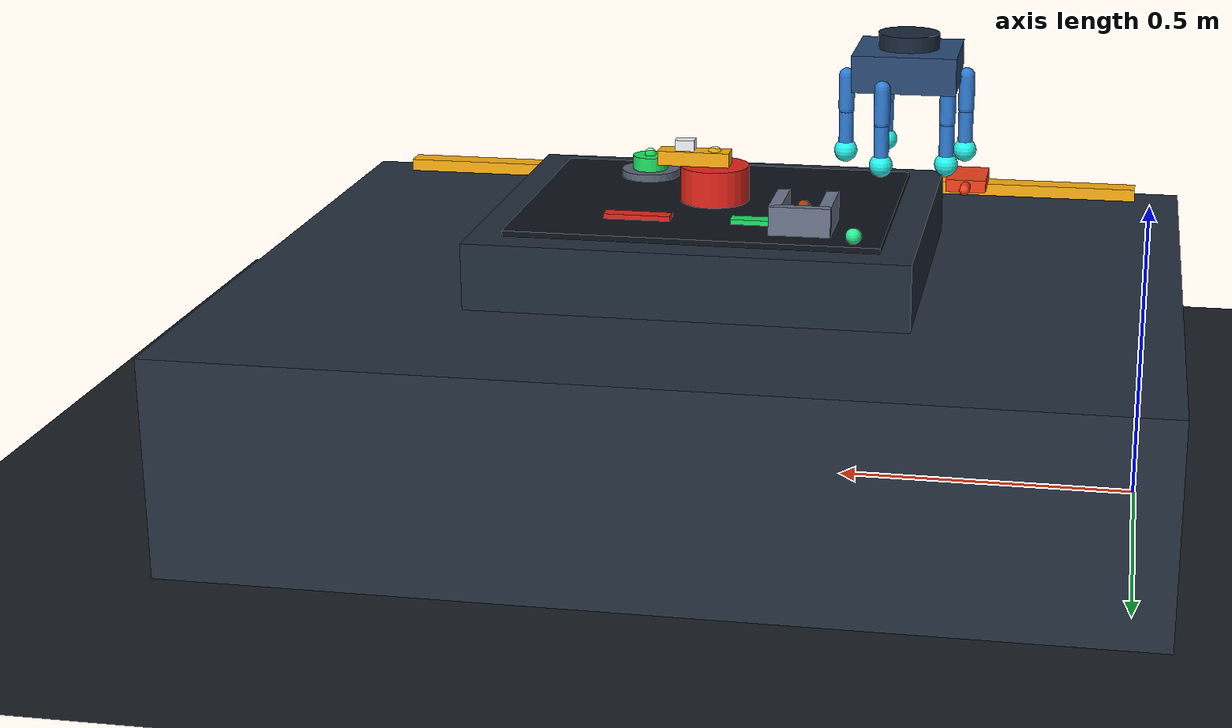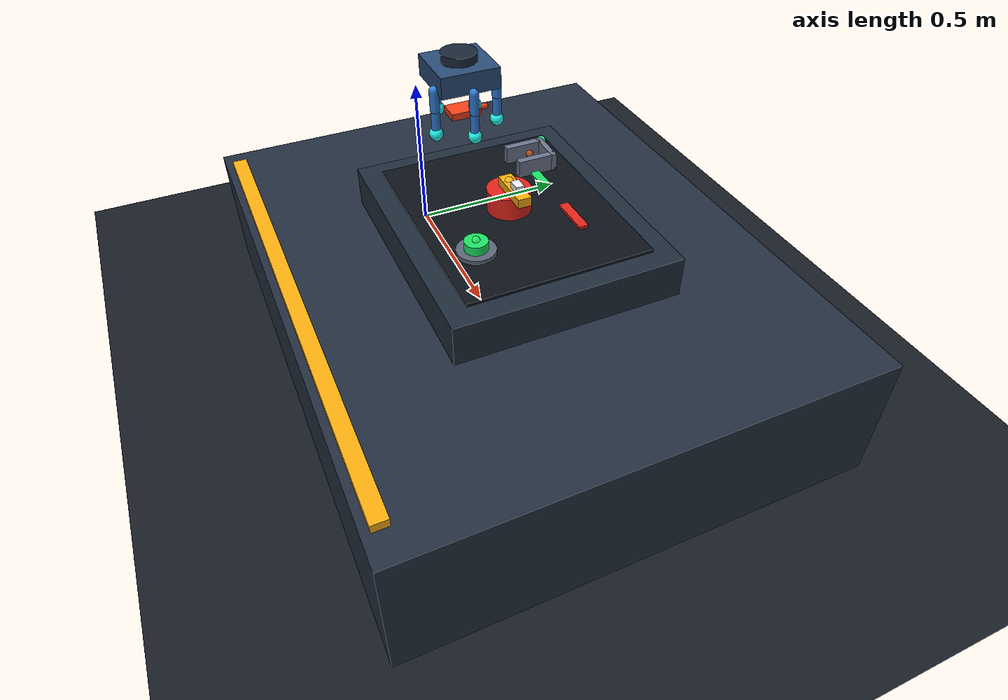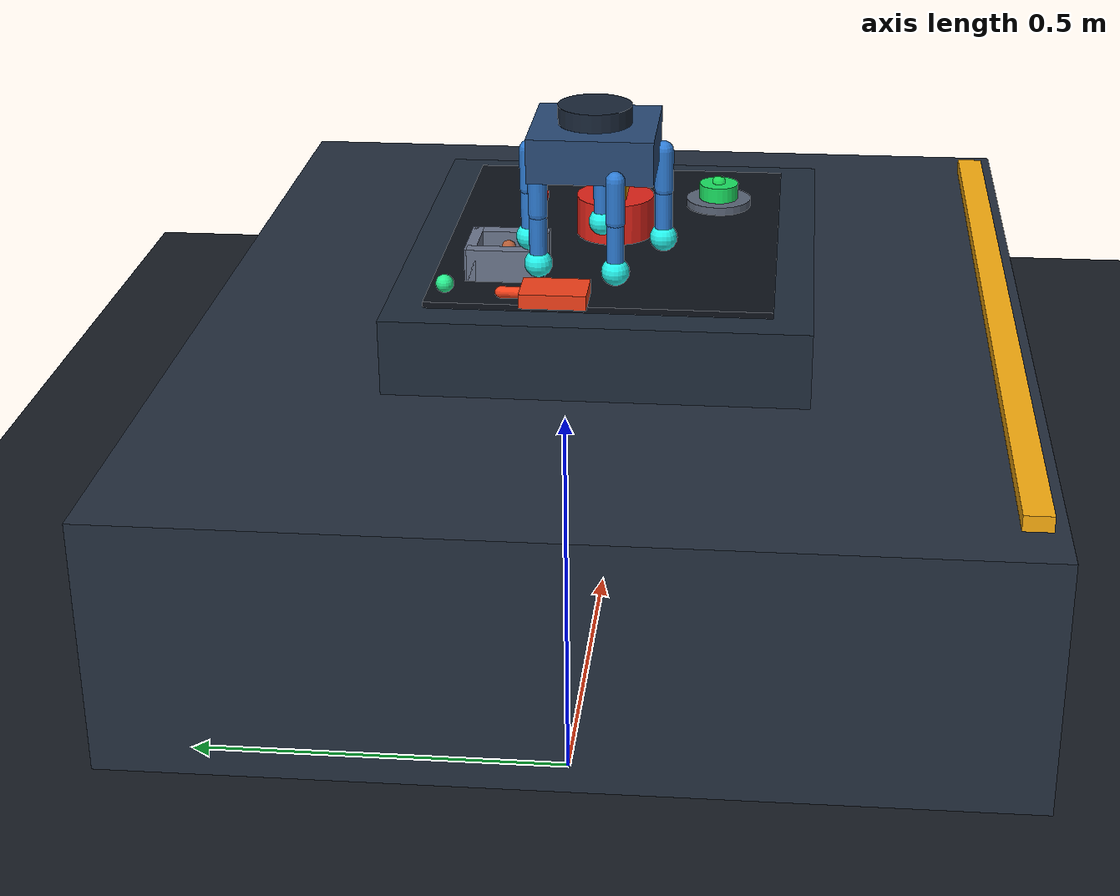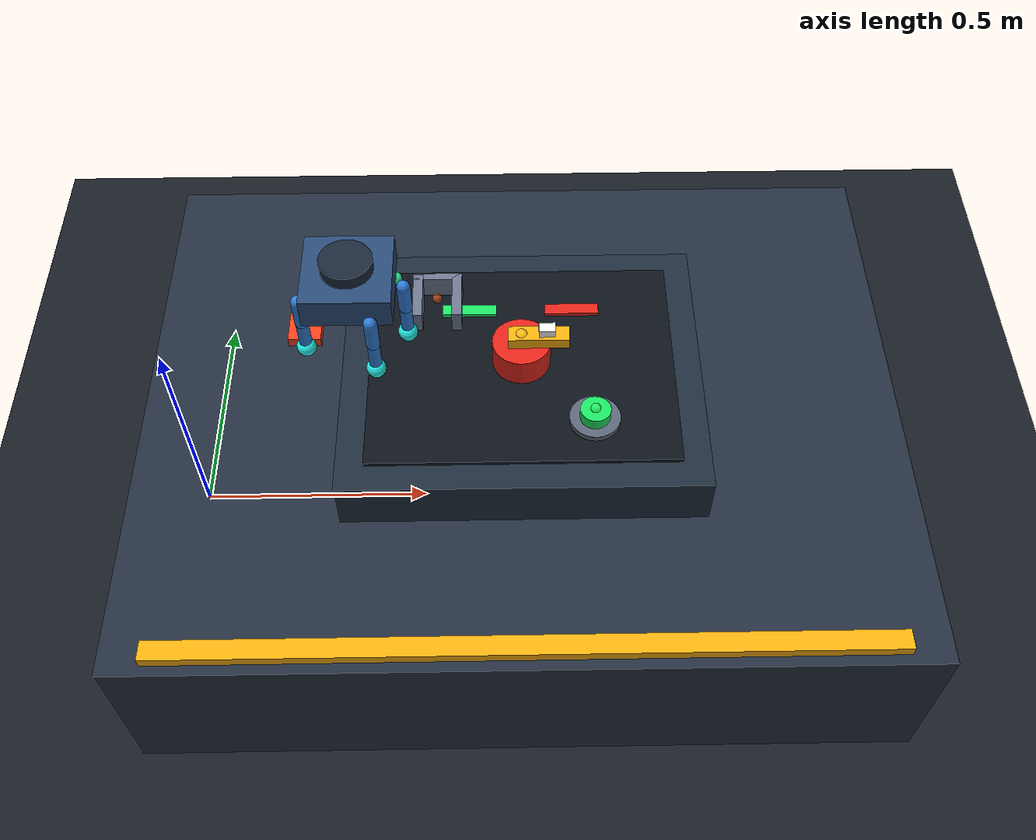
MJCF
<mujoco model="Lockout Relay Rescue">
  <compiler angle="radian" coordinate="local"/>
  <option timestep="0.004" integrator="implicitfast" gravity="0 0 -9.81"/>
  <size nconmax="600" njmax="800"/>
  <visual>
    <global offwidth="800" offheight="500" azimuth="142" elevation="-28"/>
    <quality shadowsize="4096" offsamples="4"/>
  </visual>
  <default>
    <joint damping="1.1" armature="0.018" limited="true"/>
    <geom density="420" friction="1.10 0.018 0.004" condim="4"/>
    <position kp="420" forcerange="-150 150"/>
  </default>
  <asset>
    <texture type="skybox" builtin="gradient" rgb1="0.055 0.080 0.110" rgb2="0.005 0.008 0.015" width="512" height="3072"/>
    <texture name="floor_tex" type="2d" builtin="checker" rgb1="0.075 0.095 0.120" rgb2="0.115 0.135 0.165" width="256" height="256"/>
    <material name="floor" texture="floor_tex" texrepeat="6 6" reflectance="0.22"/>
    <material name="panel_material" rgba="0.12 0.17 0.23 1"/>
    <material name="safety_yellow" rgba="0.98 0.68 0.06 1"/>
    <material name="relay_red" rgba="0.88 0.14 0.10 1"/>
    <material name="safe_green" rgba="0.10 0.88 0.38 1"/>
    <material name="finger_material" rgba="0.18 0.48 0.82 1"/>
    <material name="finger_tip" rgba="0.14 0.95 0.92 1"/>
    <material name="lockout_tag" rgba="0.95 0.25 0.10 1"/>
  </asset>
  <worldbody>
    <light name="key_light" pos="-0.4 -1.3 2.4" dir="0.4 0.6 -1" diffuse="1.0 0.88 0.72" castshadow="true"/>
    <light name="rim_light" pos="1.7 1.1 1.8" dir="-1 -0.7 -0.5" diffuse="0.24 0.48 1.0"/>
    <geom name="floor" type="plane" size="4 4 0.1" material="floor"/>
    <geom name="workbench" type="box" pos="0.72 0 0.18" size="0.78 0.62 0.18" rgba="0.14 0.18 0.24 1" contype="0" conaffinity="0"/>
    <geom name="bench_front_stripe" type="box" pos="0.72 -0.58 0.37" size="0.70 0.020 0.012" material="safety_yellow" contype="0" conaffinity="0"/>

    <body name="safety_panel" pos="0.72 0 0.34" gravcomp="1">
      <joint name="panel_x" type="slide" axis="1 0 0" range="-0.045 0.045"/>
      <joint name="panel_y" type="slide" axis="0 1 0" range="-0.045 0.045"/>
      <geom name="panel_chassis" type="box" pos="0 0 0.065" size="0.36 0.30 0.065" material="panel_material"/>
      <geom name="panel_inset" type="box" pos="0 0 0.133" size="0.305 0.245 0.006" rgba="0.05 0.07 0.10 1"/>
      <geom name="panel_label_safe" type="box" pos="-0.105 0.132 0.143" size="0.055 0.013 0.004" material="safe_green" contype="0" conaffinity="0"/>
      <geom name="panel_label_live" type="box" pos="0.105 0.132 0.143" size="0.055 0.013 0.004" material="relay_red" contype="0" conaffinity="0"/>
      <site name="vision_marker" type="sphere" pos="-0.26 0.22 0.150" size="0.013" rgba="0.15 0.92 0.55 0.90"/>

      <body name="rotary_isolator" pos="0 0 0.145" gravcomp="1">
        <joint name="isolator_angle" type="hinge" axis="0 0 1" range="0 1.5708" damping="1.8" armature="0.008"/>
        <geom name="isolator_knob" type="cylinder" pos="0 0 0.025" size="0.058 0.030" material="relay_red"/>
        <geom name="isolator_handle" type="box" pos="0.034 0 0.067" size="0.060 0.018 0.012" material="safety_yellow"/>
        <geom name="isolator_key" type="box" pos="0.050 0 0.086" size="0.016 0.011 0.011" rgba="0.96 0.96 0.98 1"/>
        <site name="isolator_center" type="sphere" pos="0 0 0.075" size="0.012" rgba="1 0.8 0.1 0.35"/>
      </body>

      <body name="verification_latch" pos="0.14 -0.15 0.135">
        <joint name="latch_travel" type="slide" axis="0 0 -1" range="0 0.032" stiffness="340" springref="0" damping="3.5"/>
        <geom name="latch_guard" type="cylinder" size="0.050 0.016" rgba="0.35 0.39 0.46 1" contype="1" conaffinity="1"/>
        <geom name="latch_button" type="cylinder" pos="0 0 0.020" size="0.030 0.020" material="safe_green"/>
        <site name="latch_site" type="sphere" pos="0 0 0.042" size="0.010" rgba="0.2 1 0.4 0.45"/>
      </body>

      <geom name="tag_slot_left" type="box" pos="-0.2100 0.1400 0.158" size="0.010 0.055 0.028" rgba="0.42 0.46 0.55 1"/>
      <geom name="tag_slot_right" type="box" pos="-0.1300 0.1400 0.158" size="0.010 0.055 0.028" rgba="0.42 0.46 0.55 1"/>
      <geom name="tag_slot_back" type="box" pos="-0.1700 0.1900 0.158" size="0.050 0.008 0.028" rgba="0.42 0.46 0.55 1"/>
      <site name="tag_slot_target" type="sphere" pos="-0.17 0.14 0.174" size="0.010" rgba="1 0.40 0.10 0.60"/>
    </body>

    <body name="cartesian_hand" pos="0.4 0.0 0.72" gravcomp="1">
      <joint name="hand_x" type="slide" axis="1 0 0" range="-0.28 0.54"/>
      <joint name="hand_y" type="slide" axis="0 1 0" range="-0.48 0.48"/>
      <joint name="hand_z" type="slide" axis="0 0 1" range="-0.16 0.30"/>
      <joint name="wrist_yaw" type="hinge" axis="0 0 1" range="-1.75 1.75"/>
      <geom name="palm" type="box" size="0.084 0.084 0.030" rgba="0.16 0.29 0.46 1"/>
      <geom name="palm_guard" type="cylinder" pos="0 0 0.035" size="0.050 0.020" rgba="0.10 0.15 0.22 1" contype="0" conaffinity="0"/>
      <site name="palm_pose" type="sphere" size="0.010" rgba="0.15 0.85 1 0.60"/>

      <body name="finger_0" pos="0.10000 0.00000 -0.020">
        <joint name="finger_0_radial" type="slide" axis="-1.00000 -0.00000 0" range="0 0.062"/>
        <joint name="finger_0_knuckle" type="hinge" axis="0.00000 -1.00000 0" range="-0.10 0.65"/>
        <geom name="finger_0_proximal" type="capsule" fromto="0 0 0 0 0 -0.055" size="0.013" material="finger_material"/>
        <body name="finger_0_distal_body" pos="0 0 -0.055">
          <joint name="finger_0_distal" type="hinge" axis="0.00000 -1.00000 0" range="-0.10 0.75"/>
          <geom name="finger_0_distal" type="capsule" fromto="0 0 0 0 0 -0.060" size="0.012" material="finger_material"/>
          <geom name="finger_0_tip" type="sphere" pos="0 0 -0.070" size="0.019" material="finger_tip"/>
          <site name="finger_0_touch" type="sphere" pos="0 0 -0.070" size="0.017" rgba="0.20 0.95 0.95 0.40"/>
        </body>
      </body>

      <body name="finger_1" pos="0.03200 0.09400 -0.020">
        <joint name="finger_1_radial" type="slide" axis="-0.32226 -0.94665 0" range="0 0.062"/>
        <joint name="finger_1_knuckle" type="hinge" axis="0.94665 -0.32226 0" range="-0.10 0.65"/>
        <geom name="finger_1_proximal" type="capsule" fromto="0 0 0 0 0 -0.055" size="0.013" material="finger_material"/>
        <body name="finger_1_distal_body" pos="0 0 -0.055">
          <joint name="finger_1_distal" type="hinge" axis="0.94665 -0.32226 0" range="-0.10 0.75"/>
          <geom name="finger_1_distal" type="capsule" fromto="0 0 0 0 0 -0.060" size="0.012" material="finger_material"/>
          <geom name="finger_1_tip" type="sphere" pos="0 0 -0.070" size="0.019" material="finger_tip"/>
          <site name="finger_1_touch" type="sphere" pos="0 0 -0.070" size="0.017" rgba="0.20 0.95 0.95 0.40"/>
        </body>
      </body>

      <body name="finger_2" pos="-0.07100 0.07000 -0.020">
        <joint name="finger_2_radial" type="slide" axis="0.71210 -0.70207 0" range="0 0.062"/>
        <joint name="finger_2_knuckle" type="hinge" axis="0.70207 0.71210 0" range="-0.10 0.65"/>
        <geom name="finger_2_proximal" type="capsule" fromto="0 0 0 0 0 -0.055" size="0.013" material="finger_material"/>
        <body name="finger_2_distal_body" pos="0 0 -0.055">
          <joint name="finger_2_distal" type="hinge" axis="0.70207 0.71210 0" range="-0.10 0.75"/>
          <geom name="finger_2_distal" type="capsule" fromto="0 0 0 0 0 -0.060" size="0.012" material="finger_material"/>
          <geom name="finger_2_tip" type="sphere" pos="0 0 -0.070" size="0.019" material="finger_tip"/>
          <site name="finger_2_touch" type="sphere" pos="0 0 -0.070" size="0.017" rgba="0.20 0.95 0.95 0.40"/>
        </body>
      </body>

      <body name="finger_3" pos="-0.09400 -0.03500 -0.020">
        <joint name="finger_3_radial" type="slide" axis="0.93715 0.34894 0" range="0 0.062"/>
        <joint name="finger_3_knuckle" type="hinge" axis="-0.34894 0.93715 0" range="-0.10 0.65"/>
        <geom name="finger_3_proximal" type="capsule" fromto="0 0 0 0 0 -0.055" size="0.013" material="finger_material"/>
        <body name="finger_3_distal_body" pos="0 0 -0.055">
          <joint name="finger_3_distal" type="hinge" axis="-0.34894 0.93715 0" range="-0.10 0.75"/>
          <geom name="finger_3_distal" type="capsule" fromto="0 0 0 0 0 -0.060" size="0.012" material="finger_material"/>
          <geom name="finger_3_tip" type="sphere" pos="0 0 -0.070" size="0.019" material="finger_tip"/>
          <site name="finger_3_touch" type="sphere" pos="0 0 -0.070" size="0.017" rgba="0.20 0.95 0.95 0.40"/>
        </body>
      </body>

      <body name="finger_4" pos="0.04300 -0.09000 -0.020">
        <joint name="finger_4_radial" type="slide" axis="-0.43110 0.90230 0" range="0 0.062"/>
        <joint name="finger_4_knuckle" type="hinge" axis="-0.90230 -0.43110 0" range="-0.10 0.65"/>
        <geom name="finger_4_proximal" type="capsule" fromto="0 0 0 0 0 -0.055" size="0.013" material="finger_material"/>
        <body name="finger_4_distal_body" pos="0 0 -0.055">
          <joint name="finger_4_distal" type="hinge" axis="-0.90230 -0.43110 0" range="-0.10 0.75"/>
          <geom name="finger_4_distal" type="capsule" fromto="0 0 0 0 0 -0.060" size="0.012" material="finger_material"/>
          <geom name="finger_4_tip" type="sphere" pos="0 0 -0.070" size="0.019" material="finger_tip"/>
          <site name="finger_4_touch" type="sphere" pos="0 0 -0.070" size="0.017" rgba="0.20 0.95 0.95 0.40"/>
        </body>
      </body>
      <body name="tool_mounted_lockout_tag" pos="-0.105 0.045 -0.175">
        <geom name="lockout_tag" type="box" size="0.032 0.045 0.010" material="lockout_tag"/>
        <geom name="tag_tab" type="capsule" fromto="0 0.035 0 0 0.072 0" size="0.008" material="lockout_tag"/>
        <site name="tag_tip" type="sphere" pos="0 0 -0.012" size="0.009" rgba="1 0.30 0.08 0.65"/>
      </body>
    </body>
    <camera name="overview" pos="1.56 -1.65 1.28" xyaxes="0.74 0.67 0 -0.28 0.31 0.91"/>
  </worldbody>
  <actuator>
    <position name="hand_x_position" joint="hand_x" kp="760" forcerange="-260 260"/>
    <position name="hand_y_position" joint="hand_y" kp="760" forcerange="-260 260"/>
    <position name="hand_z_position" joint="hand_z" kp="840" forcerange="-300 300"/>
    <position name="wrist_yaw_position" joint="wrist_yaw" kp="115" forcerange="-55 55"/>

    <position name="finger_0_radial_position" joint="finger_0_radial" kp="135" forcerange="-26 26"/>
    <position name="finger_0_knuckle_position" joint="finger_0_knuckle" kp="55" forcerange="-10 10"/>
    <position name="finger_0_distal_position" joint="finger_0_distal" kp="42" forcerange="-8 8"/>

    <position name="finger_1_radial_position" joint="finger_1_radial" kp="135" forcerange="-26 26"/>
    <position name="finger_1_knuckle_position" joint="finger_1_knuckle" kp="55" forcerange="-10 10"/>
    <position name="finger_1_distal_position" joint="finger_1_distal" kp="42" forcerange="-8 8"/>

    <position name="finger_2_radial_position" joint="finger_2_radial" kp="135" forcerange="-26 26"/>
    <position name="finger_2_knuckle_position" joint="finger_2_knuckle" kp="55" forcerange="-10 10"/>
    <position name="finger_2_distal_position" joint="finger_2_distal" kp="42" forcerange="-8 8"/>

    <position name="finger_3_radial_position" joint="finger_3_radial" kp="135" forcerange="-26 26"/>
    <position name="finger_3_knuckle_position" joint="finger_3_knuckle" kp="55" forcerange="-10 10"/>
    <position name="finger_3_distal_position" joint="finger_3_distal" kp="42" forcerange="-8 8"/>

    <position name="finger_4_radial_position" joint="finger_4_radial" kp="135" forcerange="-26 26"/>
    <position name="finger_4_knuckle_position" joint="finger_4_knuckle" kp="55" forcerange="-10 10"/>
    <position name="finger_4_distal_position" joint="finger_4_distal" kp="42" forcerange="-8 8"/>
    <position name="panel_x_position" joint="panel_x" kp="1200" forcerange="-280 280"/>
    <position name="panel_y_position" joint="panel_y" kp="1200" forcerange="-280 280"/>
    <motor name="wrist_coupled_isolator_torque" joint="isolator_angle" gear="1" forcerange="-8 8"/>
  </actuator>
  <sensor>
    <framepos name="vision_marker_position" objtype="site" objname="vision_marker"/>
    <framepos name="palm_position" objtype="site" objname="palm_pose"/>
    <framepos name="tag_position" objtype="site" objname="tag_tip"/>
    <framepos name="tag_slot_position" objtype="site" objname="tag_slot_target"/>
    <framepos name="isolator_position" objtype="site" objname="isolator_center"/>
    <jointpos name="isolator_angle_sensor" joint="isolator_angle"/>
    <jointvel name="isolator_velocity_sensor" joint="isolator_angle"/>
    <jointpos name="latch_travel_sensor" joint="latch_travel"/>
    <touch name="finger_0_touch_sensor" site="finger_0_touch"/>
<touch name="finger_1_touch_sensor" site="finger_1_touch"/>
<touch name="finger_2_touch_sensor" site="finger_2_touch"/>
<touch name="finger_3_touch_sensor" site="finger_3_touch"/>
<touch name="finger_4_touch_sensor" site="finger_4_touch"/>
  </sensor>
</mujoco>
